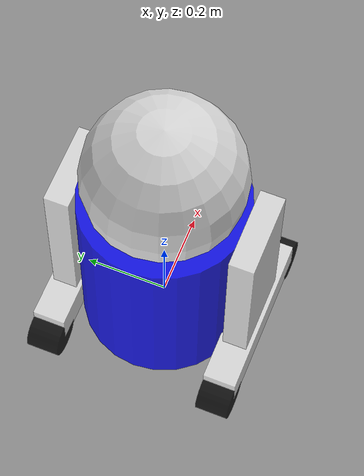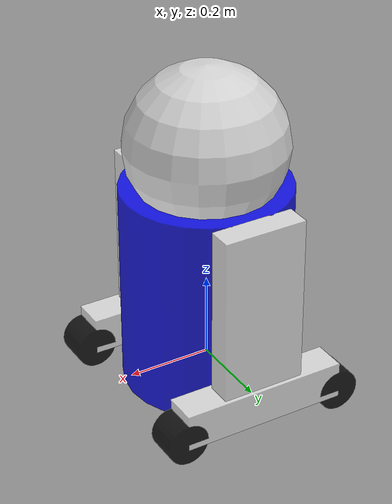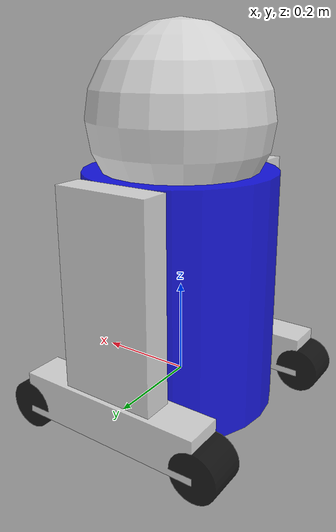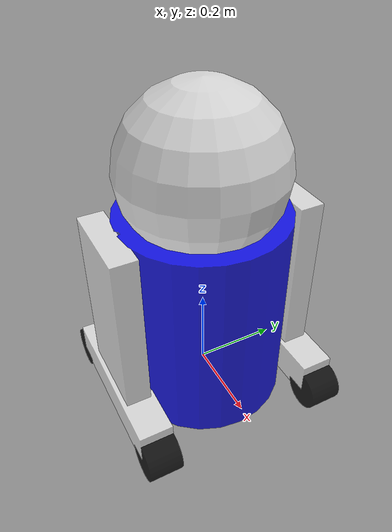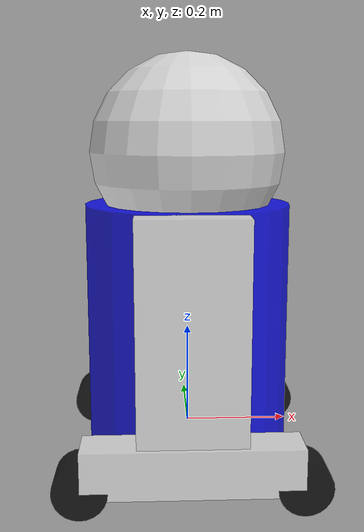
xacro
<?xml version="1.0"?>

<robot name="robot" xmlns:xacro="http://www.ros.org/wiki/xacro">

  <material name="White">
    <color rgba="1 1 1 0.7"/>
  </material>

  <material name="Blue">
    <color rgba="0 0 1 0.8"/>
  </material>

  <material name="Black">
    <color rgba="0 0 0 0.8"/>
  </material>

  <!-- BASE -->

  <link name="base_link">

    <visual>
      <geometry>
        <cylinder radius="0.2" length="0.5"/>
      </geometry>
      <origin xyz="0 0 0.2" rpy="0 0 0"/>
      <material name="Blue"/>
    </visual>

    <collision>
      <geometry>
        <cylinder radius="0.2" length="0.5"/>
      </geometry>
      <origin xyz="0 0 0.2" rpy="0 0 0"/>
    </collision>

    <inertial>
      <mass value="2.0"/>

      <origin xyz="0 0 0.2" rpy="0 0 0"/>

      <inertia
        ixx="0.1"
        ixy="0.0"
        ixz="0.0"
        iyy="0.1"
        iyz="0.0"
        izz="0.1"/>
    </inertial>

  </link>

  <!-- HEAD -->

  <link name="head">

    <visual>
      <geometry>
        <sphere radius="0.19"/>
      </geometry>
      <material name="White"/>
    </visual>

    <collision>
      <geometry>
        <sphere radius="0.19"/>
      </geometry>
    </collision>

    <inertial>

      <mass value="1.0"/>

      <inertia
        ixx="0.01"
        ixy="0.0"
        ixz="0.0"
        iyy="0.01"
        iyz="0.0"
        izz="0.01"/>

    </inertial>

  </link>

  <joint name="base_head" type="continuous">

    <parent link="base_link"/>
    <child link="head"/>

    <origin xyz="0 0 0.55" rpy="0 0 0"/>

    <axis xyz="0 0 1"/>

  </joint>

  <!-- LEG MACRO -->

  <xacro:macro name="leg" params="name ypos yorg">

    <link name="${name}">

      <visual>
        <geometry>
          <box size="0.2 0.06 0.5"/>
        </geometry>

        <origin xyz="0 ${ypos} 0.2" rpy="0 0 0"/>

        <material name="White"/>
      </visual>

      <collision>
        <geometry>
          <box size="0.2 0.06 0.5"/>
        </geometry>

        <origin xyz="0 ${ypos} 0.2" rpy="0 0 0"/>
      </collision>

      <inertial>

        <mass value="1.0"/>

        <inertia
          ixx="0.02"
          ixy="0.0"
          ixz="0.0"
          iyy="0.02"
          iyz="0.0"
          izz="0.02"/>

      </inertial>

    </link>

    <joint name="base_${name}" type="fixed">

      <parent link="base_link"/>
      <child link="${name}"/>

      <origin xyz="0 ${yorg} 0" rpy="0 0 0"/>

    </joint>

  </xacro:macro>

  <!-- BASE MACRO -->

  <xacro:macro name="base" params="pname cname ypos">

    <link name="${cname}">

      <visual>
        <geometry>
          <box size="0.4 0.08 0.09"/>
        </geometry>

        <origin xyz="0 ${ypos} 0" rpy="0 0 0"/>

        <material name="White"/>
      </visual>

      <collision>
        <geometry>
          <box size="0.4 0.08 0.09"/>
        </geometry>

        <origin xyz="0 ${ypos} 0" rpy="0 0 0"/>
      </collision>

      <inertial>

        <mass value="0.8"/>

        <inertia
          ixx="0.01"
          ixy="0.0"
          ixz="0.0"
          iyy="0.01"
          iyz="0.0"
          izz="0.01"/>

      </inertial>

    </link>

    <joint name="base_${cname}" type="fixed">

      <parent link="${pname}"/>
      <child link="${cname}"/>

      <origin xyz="0 0 0" rpy="0 0 0"/>

    </joint>

  </xacro:macro>

  <!-- WHEEL MACRO -->

  <xacro:macro name="wheel" params="pname cname xpos ypos">

    <link name="${cname}">

      <visual>
        <geometry>
          <cylinder radius="0.05" length="0.08"/>
        </geometry>

        <origin xyz="0 0 0" rpy="1.5707 0 0"/>

        <material name="Black"/>
      </visual>

      <collision>
        <geometry>
          <cylinder radius="0.05" length="0.08"/>
        </geometry>

        <origin xyz="0 0 0" rpy="1.5707 0 0"/>
      </collision>

      <inertial>

        <mass value="0.3"/>

        <inertia
          ixx="0.001"
          ixy="0.0"
          ixz="0.0"
          iyy="0.001"
          iyz="0.0"
          izz="0.001"/>

      </inertial>

    </link>

    <joint name="base_${cname}" type="continuous">

      <parent link="${pname}"/>
      <child link="${cname}"/>

      <origin xyz="${xpos} ${ypos} -0.03" rpy="0 0 0"/>

      <axis xyz="0 1 0"/>

    </joint>

  </xacro:macro>

  <!-- ROBOT ASSEMBLY -->

  <xacro:leg name="right_leg" ypos="0.2" yorg="0.02"/>
  <xacro:leg name="left_leg" ypos="-0.2" yorg="-0.02"/>

  <xacro:base pname="right_leg" cname="right_base" ypos="0.2"/>
  <xacro:base pname="left_leg" cname="left_base" ypos="-0.2"/>

  <xacro:wheel pname="right_base" cname="right_wheel1" xpos="0.2" ypos="0.2"/>
  <xacro:wheel pname="right_base" cname="right_wheel2" xpos="-0.2" ypos="0.2"/>

  <xacro:wheel pname="left_base" cname="left_wheel1" xpos="0.2" ypos="-0.2"/>
  <xacro:wheel pname="left_base" cname="left_wheel2" xpos="-0.2" ypos="-0.2"/>

</robot>
